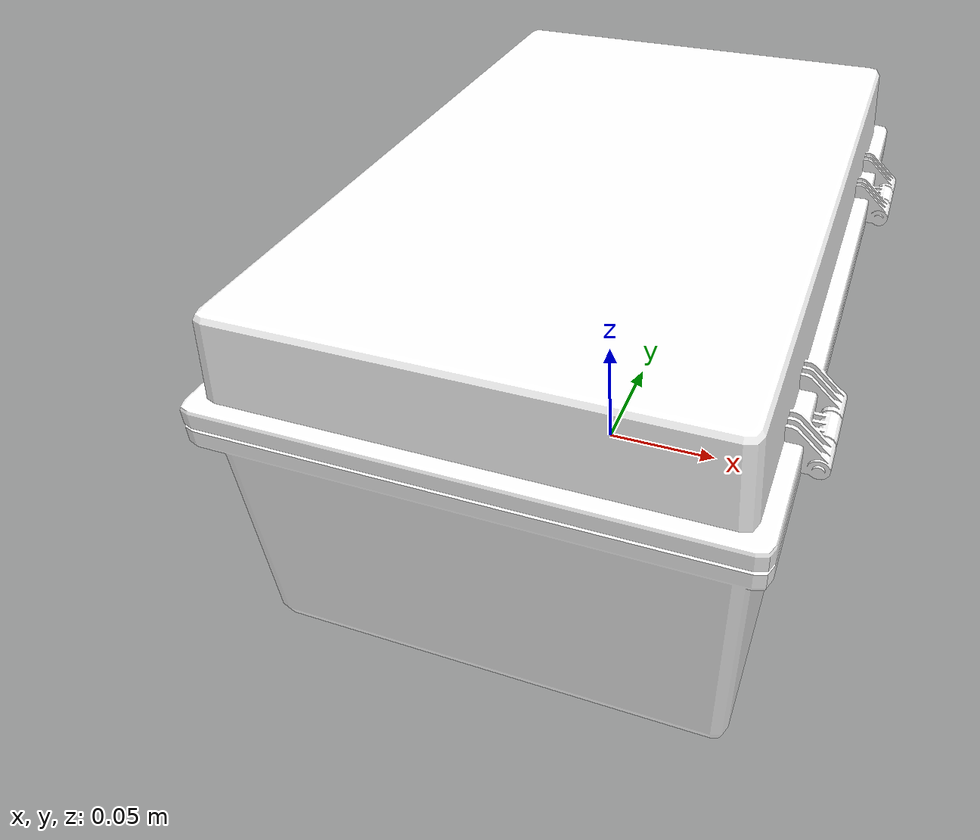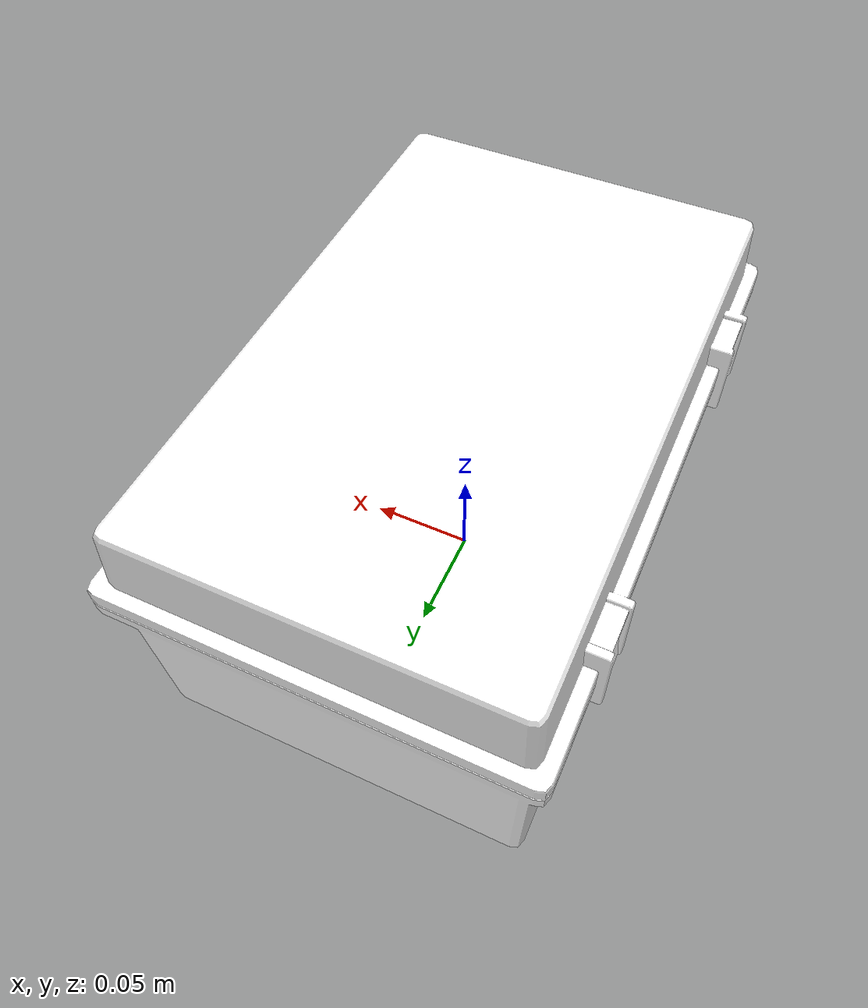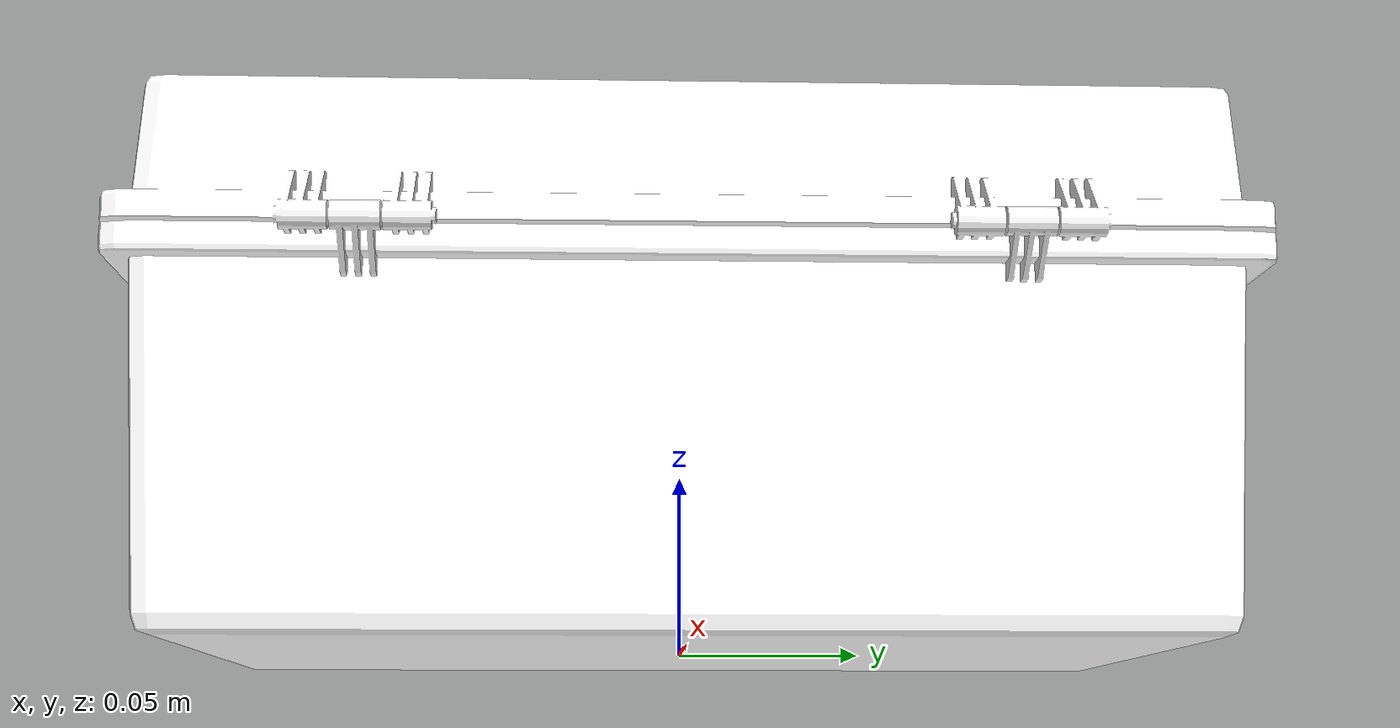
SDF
<?xml version="1.0"?>
<sdf version="1.6">
  <model name="roboboat_cpubox">
    <pose>0 0 0.0 0 0 0</pose>
    <link name="base_link">
      <inertial>
        <pose>0 0 0.0 0 0 0</pose>
        <!-- 6.35 Kg. (dock block) x 9 (num blocks) + 10 Kg (estimated). -->
        <mass>6.715</mass>
        <inertia>
          <ixx>1.3486</ixx>
          <ixy>0</ixy>
          <ixz>0</ixz>
          <iyy>1.3486</iyy>
          <iyz>0</iyz>
          <izz>2.51813</izz>
        </inertia>
      </inertial>
      <visual name="visual">
        <geometry>
           <mesh>
            <uri>file://roboboat_cpubox/meshes/drybox.dae</uri>
          </mesh>
        </geometry>
        <material>
          <diffuse>1.0 1.0 1.0</diffuse>
          <specular>1.0 1.0 1.0</specular>
          <pbr>
            <metal>
              <albedo_map>file://roboboat_cpubox/meshes/DryBox_Albedo.png</albedo_map>
              <roughness_map>file://roboboat_cpubox/mesh/DryBox_Roughness.png</roughness_map>
            </metal>
          </pbr>
        </material>
      </visual>

    </link>
  </model>
</sdf>
